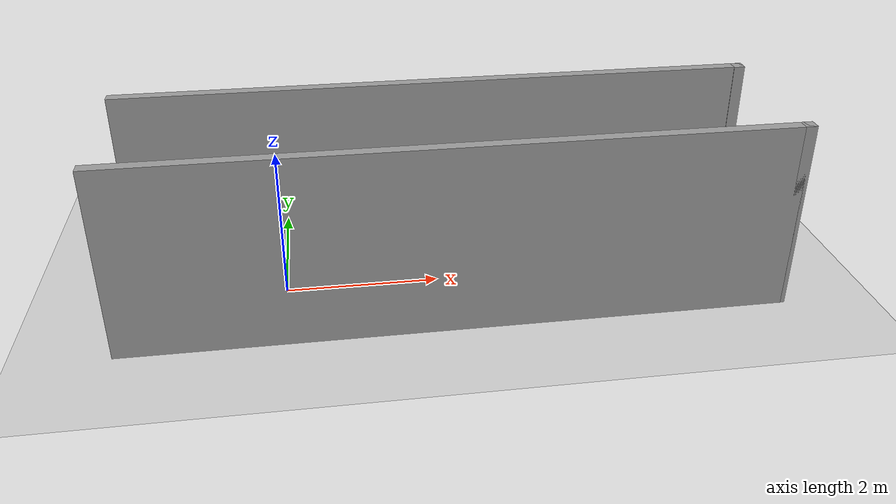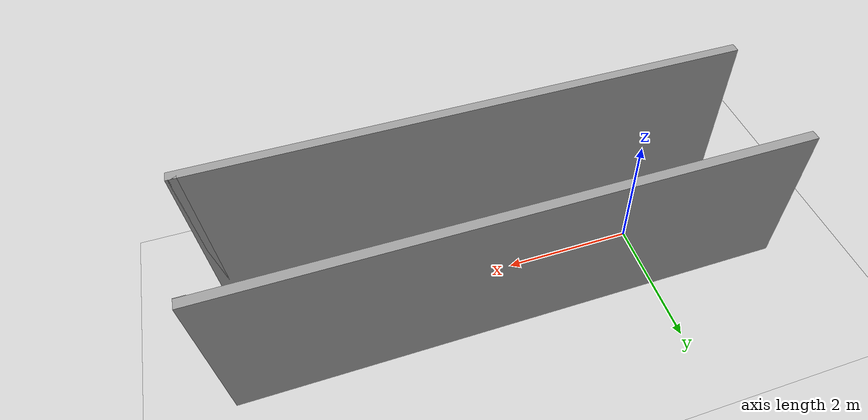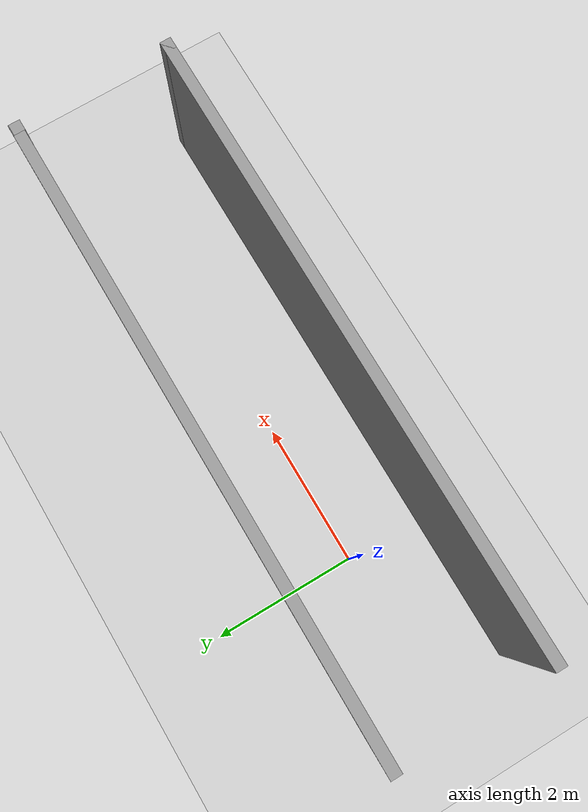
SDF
<sdf version="1.6">
 <world name="default">
  <light name="sun" type="directional">
   <pose>0 0 10 0 -0 0</pose>
   <diffuse>0.8 0.8 0.8 1</diffuse>
   <specular>0.1 0.1 0.1 1</specular>
   <attenuation>
    <range>1000</range>
    <constant>0.9</constant>
    <linear>0.01</linear>
    <quadratic>0.001</quadratic>
   </attenuation>
   <direction>-0.5 0.5 -1</direction>
  </light>
  <model name="ground_plane">
   <static>1</static>
   <link name="link">
    <collision name="collision">
     <geometry><plane><normal>0 0 1</normal><size>100 100</size></plane></geometry>
     <surface><friction><ode><mu>100</mu><mu2>50</mu2></ode></friction></surface>
    </collision>
    <visual name="visual">
     <cast_shadows>0</cast_shadows>
     <geometry><plane><normal>0 0 1</normal><size>100 100</size></plane></geometry>
     <material>
      <script><uri>file://media/materials/scripts/gazebo.material</uri><name>Gazebo/Grey</name></script>
     </material>
    </visual>
   </link>
  </model>
  <gravity>0 0 -9.8</gravity>
  <magnetic_field>6e-06 2.3e-05 -4.2e-05</magnetic_field>
  <atmosphere type="adiabatic"/>
  <physics name="default_physics" default="0" type="ode">
   <max_step_size>0.001</max_step_size>
   <real_time_factor>1</real_time_factor>
   <real_time_update_rate>1000</real_time_update_rate>
  </physics>
  <scene><ambient>0.4 0.4 0.4 1</ambient><background>0.7 0.7 0.7 1</background><shadows>1</shadows></scene>
  <spherical_coordinates>
   <surface_model>EARTH_WGS84</surface_model>
   <latitude_deg>0</latitude_deg>
   <longitude_deg>0</longitude_deg>
   <elevation>0</elevation>
   <heading_deg>0</heading_deg>
  </spherical_coordinates>
  <model name="row">
   <pose>2.16526 -0.08558 0 0 -0 0</pose>
   <link name="Wall_0">
    <collision name="Wall_0_Collision">
     <geometry><box><size>8.5 0.15 2.5</size></box></geometry>
     <pose>0 0 1.25 0 -0 0</pose>
    </collision>
    <visual name="Wall_0_Visual">
     <pose>0 0 1.25 0 -0 0</pose>
     <geometry><box><size>8.5 0.15 2.5</size></box></geometry>
     <material>
      <script><uri>file://media/materials/scripts/gazebo.material</uri><name>Gazebo/Grey</name></script>
      <ambient>1 1 1 1</ambient>
     </material>
    </visual>
    <pose>0.010519 -1.0349 0 0 -0 0</pose>
   </link>
   <link name="Wall_1">
    <collision name="Wall_1_Collision">
     <geometry><box><size>0.15 0.15 2.5</size></box></geometry>
     <pose>0 0 1.25 0 -0 0</pose>
    </collision>
    <visual name="Wall_1_Visual">
     <pose>0 0 1.25 0 -0 0</pose>
     <geometry><box><size>0.15 0.15 2.5</size></box></geometry>
     <material>
      <script><uri>file://media/materials/scripts/gazebo.material</uri><name>Gazebo/Grey</name></script>
      <ambient>1 1 1 1</ambient>
     </material>
    </visual>
    <pose>4.18552 -1.0349 0 0 -0 0</pose>
   </link>
   <link name="Wall_4">
    <collision name="Wall_4_Collision">
     <geometry><box><size>8.5 0.15 2.5</size></box></geometry>
     <pose>0 0 1.25 0 -0 0</pose>
    </collision>
    <visual name="Wall_4_Visual">
     <pose>0 0 1.25 0 -0 0</pose>
     <geometry><box><size>8.5 0.15 2.5</size></box></geometry>
     <material>
      <script><uri>file://media/materials/scripts/gazebo.material</uri><name>Gazebo/Grey</name></script>
      <ambient>1 1 1 1</ambient>
     </material>
    </visual>
    <pose>-0.010519 1.0349 0 0 -0 0</pose>
   </link>
   <link name="Wall_5">
    <collision name="Wall_5_Collision">
     <geometry><box><size>0.15 0.15 2.5</size></box></geometry>
     <pose>0 0 1.25 0 -0 0</pose>
    </collision>
    <visual name="Wall_5_Visual">
     <pose>0 0 1.25 0 -0 0</pose>
     <geometry><box><size>0.15 0.15 2.5</size></box></geometry>
     <material>
      <script><uri>file://media/materials/scripts/gazebo.material</uri><name>Gazebo/Grey</name></script>
      <ambient>1 1 1 1</ambient>
     </material>
    </visual>
    <pose>4.16448 1.02734 0 0 -0 0</pose>
   </link>
   <static>1</static>
  </model>
 </world>
</sdf>
